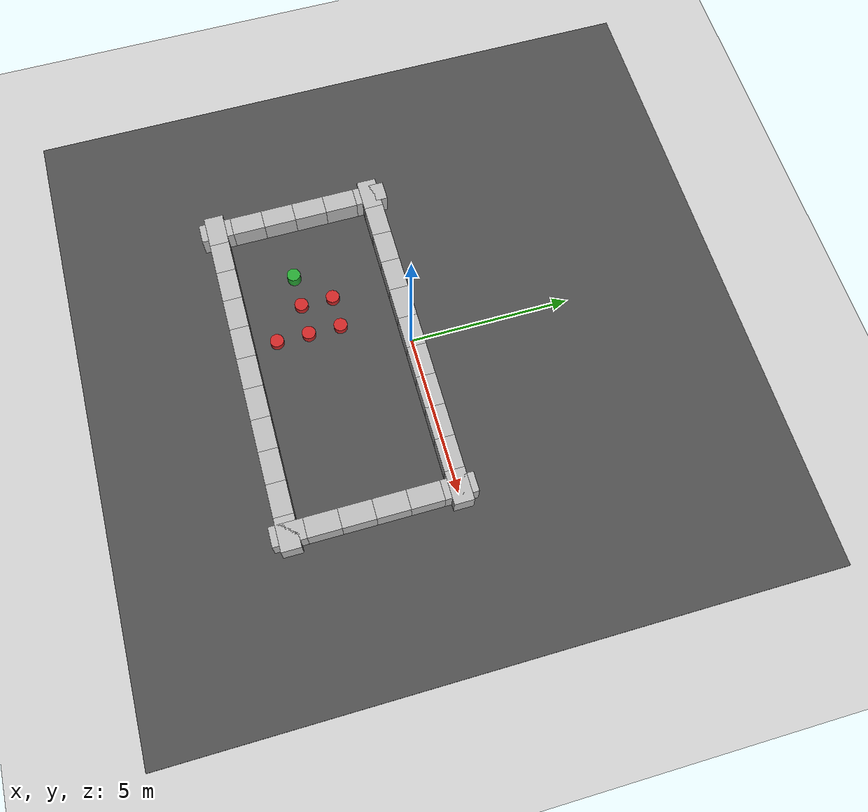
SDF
<sdf version="1.4">
 <world name="default">
  <light name="sun" type="directional">
   <pose>0 0 10 0 -0 0</pose>
   <diffuse>0.8 0.8 0.8 1</diffuse>
   <specular>0.2 0.2 0.2 1</specular>
   <attenuation>
    <range>1000</range>
    <constant>0.9</constant>
    <linear>0.01</linear>
    <quadratic>0.001</quadratic>
   </attenuation>
   <direction>-0.5 0.1 -0.9</direction>
  </light>
  <model name="ground_plane">
   <static>1</static>
   <link name="link">
    <collision name="collision">
     <geometry><plane><normal>0 0 1</normal><size>100 100</size></plane></geometry>
     <surface><friction><ode><mu>100</mu><mu2>50</mu2></ode></friction></surface>
    </collision>
    <visual name="visual">
     <cast_shadows>0</cast_shadows>
     <geometry><plane><normal>0 0 1</normal><size>100 100</size></plane></geometry>
     <material>
      <script><uri>file://media/materials/scripts/gazebo.material</uri><name>Gazebo/Grey</name></script>
     </material>
    </visual>
    <velocity_decay><linear>0</linear><angular>0</angular></velocity_decay>
   </link>
  </model>
  <physics type="ode">
   <max_step_size>0.001</max_step_size>
   <real_time_factor>1</real_time_factor>
   <real_time_update_rate>1000</real_time_update_rate>
   <gravity>0 0 -9.8</gravity>
  </physics>
  <scene><ambient>0.4 0.4 0.4 1</ambient><background>0.7 0.7 0.7 1</background><shadows>1</shadows></scene>
  <spherical_coordinates>
   <surface_model>EARTH_WGS84</surface_model>
   <latitude_deg>0</latitude_deg>
   <longitude_deg>0</longitude_deg>
   <elevation>0</elevation>
   <heading_deg>0</heading_deg>
  </spherical_coordinates>
  <model name="wall_0">
   <static>1</static>
   <link name="link">
    <pose>0 0 0.25 0 -0 0</pose>
    <collision name="collision"><geometry><box><size>1 0.6 1</size></box></geometry></collision>
    <visual name="visual">
     <geometry>
      <mesh><uri>model://brick_box_3x1x3/meshes/simple_box.dae</uri><scale>1 0.6 1</scale></mesh>
     </geometry>
     <material>
      <script>
       <uri>model://brick_box_3x1x3/materials/scripts</uri>
       <uri>model://brick_box_3x1x3/materials/textures</uri>
       <name>BrickBox/Diffuse</name>
      </script>
     </material>
    </visual>
    <velocity_decay><linear>0</linear><angular>0</angular></velocity_decay>
   </link>
   <pose>4 -5 0 0 -0 0</pose>
  </model>
  <model name="wall_1">
   <static>1</static>
   <link name="link">
    <pose>0 0 0.25 0 -0 0</pose>
    <collision name="collision"><geometry><box><size>1 0.6 1</size></box></geometry></collision>
    <visual name="visual">
     <geometry>
      <mesh><uri>model://brick_box_3x1x3/meshes/simple_box.dae</uri><scale>1 0.6 1</scale></mesh>
     </geometry>
     <material>
      <script>
       <uri>model://brick_box_3x1x3/materials/scripts</uri>
       <uri>model://brick_box_3x1x3/materials/textures</uri>
       <name>BrickBox/Diffuse</name>
      </script>
     </material>
    </visual>
    <velocity_decay><linear>0</linear><angular>0</angular></velocity_decay>
   </link>
   <pose>3 -5 0 0 -0 0</pose>
  </model>
  <model name="wall_2">
   <static>1</static>
   <link name="link">
    <pose>0 0 0.25 0 -0 0</pose>
    <collision name="collision"><geometry><box><size>1 0.6 1</size></box></geometry></collision>
    <visual name="visual">
     <geometry>
      <mesh><uri>model://brick_box_3x1x3/meshes/simple_box.dae</uri><scale>1 0.6 1</scale></mesh>
     </geometry>
     <material>
      <script>
       <uri>model://brick_box_3x1x3/materials/scripts</uri>
       <uri>model://brick_box_3x1x3/materials/textures</uri>
       <name>BrickBox/Diffuse</name>
      </script>
     </material>
    </visual>
    <velocity_decay><linear>0</linear><angular>0</angular></velocity_decay>
   </link>
   <pose>2 -5 0 0 -0 0</pose>
  </model>
  <model name="wall_3">
   <static>1</static>
   <link name="link">
    <pose>0 0 0.25 0 -0 0</pose>
    <collision name="collision"><geometry><box><size>1 0.6 1</size></box></geometry></collision>
    <visual name="visual">
     <geometry>
      <mesh><uri>model://brick_box_3x1x3/meshes/simple_box.dae</uri><scale>1 0.6 1</scale></mesh>
     </geometry>
     <material>
      <script>
       <uri>model://brick_box_3x1x3/materials/scripts</uri>
       <uri>model://brick_box_3x1x3/materials/textures</uri>
       <name>BrickBox/Diffuse</name>
      </script>
     </material>
    </visual>
    <velocity_decay><linear>0</linear><angular>0</angular></velocity_decay>
   </link>
   <pose>5 -5 0 0 -0 0</pose>
  </model>
  <model name="wall_4">
   <static>1</static>
   <link name="link">
    <pose>0 0 0.25 0 -0 0</pose>
    <collision name="collision"><geometry><box><size>0.6 1 1</size></box></geometry></collision>
    <visual name="visual">
     <geometry>
      <mesh><uri>model://brick_box_3x1x3/meshes/simple_box.dae</uri><scale>0.6 1 1</scale></mesh>
     </geometry>
     <material>
      <script>
       <uri>model://brick_box_3x1x3/materials/scripts</uri>
       <uri>model://brick_box_3x1x3/materials/textures</uri>
       <name>BrickBox/Diffuse</name>
      </script>
     </material>
    </visual>
    <velocity_decay><linear>0</linear><angular>0</angular></velocity_decay>
   </link>
   <pose>5 -5 0 0 -0 0</pose>
  </model>
  <model name="wall_5">
   <static>1</static>
   <link name="link">
    <pose>0 0 0.25 0 -0 0</pose>
    <collision name="collision"><geometry><box><size>0.6 1 1</size></box></geometry></collision>
    <visual name="visual">
     <geometry>
      <mesh><uri>model://brick_box_3x1x3/meshes/simple_box.dae</uri><scale>0.6 1 1</scale></mesh>
     </geometry>
     <material>
      <script>
       <uri>model://brick_box_3x1x3/materials/scripts</uri>
       <uri>model://brick_box_3x1x3/materials/textures</uri>
       <name>BrickBox/Diffuse</name>
      </script>
     </material>
    </visual>
    <velocity_decay><linear>0</linear><angular>0</angular></velocity_decay>
   </link>
   <pose>5 -4 0 0 -0 0</pose>
  </model>
  <model name="wall_6">
   <static>1</static>
   <link name="link">
    <pose>0 0 0.25 0 -0 0</pose>
    <collision name="collision"><geometry><box><size>1 0.6 1</size></box></geometry></collision>
    <visual name="visual">
     <geometry>
      <mesh><uri>model://brick_box_3x1x3/meshes/simple_box.dae</uri><scale>1 0.6 1</scale></mesh>
     </geometry>
     <material>
      <script>
       <uri>model://brick_box_3x1x3/materials/scripts</uri>
       <uri>model://brick_box_3x1x3/materials/textures</uri>
       <name>BrickBox/Diffuse</name>
      </script>
     </material>
    </visual>
    <velocity_decay><linear>0</linear><angular>0</angular></velocity_decay>
   </link>
   <pose>1 -5 0 0 -0 0</pose>
  </model>
  <model name="wall_7">
   <static>1</static>
   <link name="link">
    <pose>0 0 0.25 0 -0 0</pose>
    <collision name="collision"><geometry><box><size>1 0.6 1</size></box></geometry></collision>
    <visual name="visual">
     <geometry>
      <mesh><uri>model://brick_box_3x1x3/meshes/simple_box.dae</uri><scale>1 0.6 1</scale></mesh>
     </geometry>
     <material>
      <script>
       <uri>model://brick_box_3x1x3/materials/scripts</uri>
       <uri>model://brick_box_3x1x3/materials/textures</uri>
       <name>BrickBox/Diffuse</name>
      </script>
     </material>
    </visual>
    <velocity_decay><linear>0</linear><angular>0</angular></velocity_decay>
   </link>
   <pose>0 -5 0 0 -0 0</pose>
  </model>
  <model name="wall_8">
   <static>1</static>
   <link name="link">
    <pose>0 0 0.25 0 -0 0</pose>
    <collision name="collision"><geometry><box><size>1 0.6 1</size></box></geometry></collision>
    <visual name="visual">
     <geometry>
      <mesh><uri>model://brick_box_3x1x3/meshes/simple_box.dae</uri><scale>1 0.6 1</scale></mesh>
     </geometry>
     <material>
      <script>
       <uri>model://brick_box_3x1x3/materials/scripts</uri>
       <uri>model://brick_box_3x1x3/materials/textures</uri>
       <name>BrickBox/Diffuse</name>
      </script>
     </material>
    </visual>
    <velocity_decay><linear>0</linear><angular>0</angular></velocity_decay>
   </link>
   <pose>-1 -5 0 0 -0 0</pose>
  </model>
  <model name="wall_9">
   <static>1</static>
   <link name="link">
    <pose>0 0 0.25 0 -0 0</pose>
    <collision name="collision"><geometry><box><size>1 0.6 1</size></box></geometry></collision>
    <visual name="visual">
     <geometry>
      <mesh><uri>model://brick_box_3x1x3/meshes/simple_box.dae</uri><scale>1 0.6 1</scale></mesh>
     </geometry>
     <material>
      <script>
       <uri>model://brick_box_3x1x3/materials/scripts</uri>
       <uri>model://brick_box_3x1x3/materials/textures</uri>
       <name>BrickBox/Diffuse</name>
      </script>
     </material>
    </visual>
    <velocity_decay><linear>0</linear><angular>0</angular></velocity_decay>
   </link>
   <pose>-2 -5 0 0 -0 0</pose>
  </model>
  <model name="wall_10">
   <static>1</static>
   <link name="link">
    <pose>0 0 0.25 0 -0 0</pose>
    <collision name="collision"><geometry><box><size>1 0.6 1</size></box></geometry></collision>
    <visual name="visual">
     <geometry>
      <mesh><uri>model://brick_box_3x1x3/meshes/simple_box.dae</uri><scale>1 0.6 1</scale></mesh>
     </geometry>
     <material>
      <script>
       <uri>model://brick_box_3x1x3/materials/scripts</uri>
       <uri>model://brick_box_3x1x3/materials/textures</uri>
       <name>BrickBox/Diffuse</name>
      </script>
     </material>
    </visual>
    <velocity_decay><linear>0</linear><angular>0</angular></velocity_decay>
   </link>
   <pose>-3 -5 0 0 -0 0</pose>
  </model>
  <model name="wall_11">
   <static>1</static>
   <link name="link">
    <pose>0 0 0.25 0 -0 0</pose>
    <collision name="collision"><geometry><box><size>1 0.6 1</size></box></geometry></collision>
    <visual name="visual">
     <geometry>
      <mesh><uri>model://brick_box_3x1x3/meshes/simple_box.dae</uri><scale>1 0.6 1</scale></mesh>
     </geometry>
     <material>
      <script>
       <uri>model://brick_box_3x1x3/materials/scripts</uri>
       <uri>model://brick_box_3x1x3/materials/textures</uri>
       <name>BrickBox/Diffuse</name>
      </script>
     </material>
    </visual>
    <velocity_decay><linear>0</linear><angular>0</angular></velocity_decay>
   </link>
   <pose>-4 -5 0 0 -0 0</pose>
  </model>
  <model name="wall_12">
   <static>1</static>
   <link name="link">
    <pose>0 0 0.25 0 -0 0</pose>
    <collision name="collision"><geometry><box><size>1 0.6 1</size></box></geometry></collision>
    <visual name="visual">
     <geometry>
      <mesh><uri>model://brick_box_3x1x3/meshes/simple_box.dae</uri><scale>1 0.6 1</scale></mesh>
     </geometry>
     <material>
      <script>
       <uri>model://brick_box_3x1x3/materials/scripts</uri>
       <uri>model://brick_box_3x1x3/materials/textures</uri>
       <name>BrickBox/Diffuse</name>
      </script>
     </material>
    </visual>
    <velocity_decay><linear>0</linear><angular>0</angular></velocity_decay>
   </link>
   <pose>-5 -5 0 0 -0 0</pose>
  </model>
  <model name="wall_13">
   <static>1</static>
   <link name="link">
    <pose>0 0 0.25 0 -0 0</pose>
    <collision name="collision"><geometry><box><size>0.6 1 1</size></box></geometry></collision>
    <visual name="visual">
     <geometry>
      <mesh><uri>model://brick_box_3x1x3/meshes/simple_box.dae</uri><scale>0.6 1 1</scale></mesh>
     </geometry>
     <material>
      <script>
       <uri>model://brick_box_3x1x3/materials/scripts</uri>
       <uri>model://brick_box_3x1x3/materials/textures</uri>
       <name>BrickBox/Diffuse</name>
      </script>
     </material>
    </visual>
    <velocity_decay><linear>0</linear><angular>0</angular></velocity_decay>
   </link>
   <pose>5 -3 0 0 -0 0</pose>
  </model>
  <model name="wall_14">
   <static>1</static>
   <link name="link">
    <pose>0 0 0.25 0 -0 0</pose>
    <collision name="collision"><geometry><box><size>0.6 1 1</size></box></geometry></collision>
    <visual name="visual">
     <geometry>
      <mesh><uri>model://brick_box_3x1x3/meshes/simple_box.dae</uri><scale>0.6 1 1</scale></mesh>
     </geometry>
     <material>
      <script>
       <uri>model://brick_box_3x1x3/materials/scripts</uri>
       <uri>model://brick_box_3x1x3/materials/textures</uri>
       <name>BrickBox/Diffuse</name>
      </script>
     </material>
    </visual>
    <velocity_decay><linear>0</linear><angular>0</angular></velocity_decay>
   </link>
   <pose>5 -2 0 0 -0 0</pose>
  </model>
  <model name="wall_15">
   <static>1</static>
   <link name="link">
    <pose>0 0 0.25 0 -0 0</pose>
    <collision name="collision"><geometry><box><size>0.6 1 1</size></box></geometry></collision>
    <visual name="visual">
     <geometry>
      <mesh><uri>model://brick_box_3x1x3/meshes/simple_box.dae</uri><scale>0.6 1 1</scale></mesh>
     </geometry>
     <material>
      <script>
       <uri>model://brick_box_3x1x3/materials/scripts</uri>
       <uri>model://brick_box_3x1x3/materials/textures</uri>
       <name>BrickBox/Diffuse</name>
      </script>
     </material>
    </visual>
    <velocity_decay><linear>0</linear><angular>0</angular></velocity_decay>
   </link>
   <pose>5 -1 0 0 -0 0</pose>
  </model>
  <model name="wall_16">
   <static>1</static>
   <link name="link">
    <pose>0 0 0.25 0 -0 0</pose>
    <collision name="collision"><geometry><box><size>0.6 1 1</size></box></geometry></collision>
    <visual name="visual">
     <geometry>
      <mesh><uri>model://brick_box_3x1x3/meshes/simple_box.dae</uri><scale>0.6 1 1</scale></mesh>
     </geometry>
     <material>
      <script>
       <uri>model://brick_box_3x1x3/materials/scripts</uri>
       <uri>model://brick_box_3x1x3/materials/textures</uri>
       <name>BrickBox/Diffuse</name>
      </script>
     </material>
    </visual>
    <velocity_decay><linear>0</linear><angular>0</angular></velocity_decay>
   </link>
   <pose>5 0 0 0 -0 0</pose>
  </model>
  <model name="wall_33">
   <static>1</static>
   <link name="link">
    <pose>0 0 0.25 0 -0 0</pose>
    <collision name="collision"><geometry><box><size>0.6 1 1</size></box></geometry></collision>
    <visual name="visual">
     <geometry>
      <mesh><uri>model://brick_box_3x1x3/meshes/simple_box.dae</uri><scale>0.6 1 1</scale></mesh>
     </geometry>
     <material>
      <script>
       <uri>model://brick_box_3x1x3/materials/scripts</uri>
       <uri>model://brick_box_3x1x3/materials/textures</uri>
       <name>BrickBox/Diffuse</name>
      </script>
     </material>
    </visual>
    <velocity_decay><linear>0</linear><angular>0</angular></velocity_decay>
   </link>
   <pose>-5 -5 0 0 -0 0</pose>
  </model>
  <model name="wall_34">
   <static>1</static>
   <link name="link">
    <pose>0 0 0.25 0 -0 0</pose>
    <collision name="collision"><geometry><box><size>0.6 1 1</size></box></geometry></collision>
    <visual name="visual">
     <geometry>
      <mesh><uri>model://brick_box_3x1x3/meshes/simple_box.dae</uri><scale>0.6 1 1</scale></mesh>
     </geometry>
     <material>
      <script>
       <uri>model://brick_box_3x1x3/materials/scripts</uri>
       <uri>model://brick_box_3x1x3/materials/textures</uri>
       <name>BrickBox/Diffuse</name>
      </script>
     </material>
    </visual>
    <velocity_decay><linear>0</linear><angular>0</angular></velocity_decay>
   </link>
   <pose>-5 -4 0 0 -0 0</pose>
  </model>
  <model name="wall_35">
   <static>1</static>
   <link name="link">
    <pose>0 0 0.25 0 -0 0</pose>
    <collision name="collision"><geometry><box><size>0.6 1 1</size></box></geometry></collision>
    <visual name="visual">
     <geometry>
      <mesh><uri>model://brick_box_3x1x3/meshes/simple_box.dae</uri><scale>0.6 1 1</scale></mesh>
     </geometry>
     <material>
      <script>
       <uri>model://brick_box_3x1x3/materials/scripts</uri>
       <uri>model://brick_box_3x1x3/materials/textures</uri>
       <name>BrickBox/Diffuse</name>
      </script>
     </material>
    </visual>
    <velocity_decay><linear>0</linear><angular>0</angular></velocity_decay>
   </link>
   <pose>-5 -3 0 0 -0 0</pose>
  </model>
  <model name="wall_36">
   <static>1</static>
   <link name="link">
    <pose>0 0 0.25 0 -0 0</pose>
    <collision name="collision"><geometry><box><size>0.6 1 1</size></box></geometry></collision>
    <visual name="visual">
     <geometry>
      <mesh><uri>model://brick_box_3x1x3/meshes/simple_box.dae</uri><scale>0.6 1 1</scale></mesh>
     </geometry>
     <material>
      <script>
       <uri>model://brick_box_3x1x3/materials/scripts</uri>
       <uri>model://brick_box_3x1x3/materials/textures</uri>
       <name>BrickBox/Diffuse</name>
      </script>
     </material>
    </visual>
    <velocity_decay><linear>0</linear><angular>0</angular></velocity_decay>
   </link>
   <pose>-5 -2 0 0 -0 0</pose>
  </model>
  <model name="wall_37">
   <static>1</static>
   <link name="link">
    <pose>0 0 0.25 0 -0 0</pose>
    <collision name="collision"><geometry><box><size>0.6 1 1</size></box></geometry></collision>
    <visual name="visual">
     <geometry>
      <mesh><uri>model://brick_box_3x1x3/meshes/simple_box.dae</uri><scale>0.6 1 1</scale></mesh>
     </geometry>
     <material>
      <script>
       <uri>model://brick_box_3x1x3/materials/scripts</uri>
       <uri>model://brick_box_3x1x3/materials/textures</uri>
       <name>BrickBox/Diffuse</name>
      </script>
     </material>
    </visual>
    <velocity_decay><linear>0</linear><angular>0</angular></velocity_decay>
   </link>
   <pose>-5 -1 0 0 -0 0</pose>
  </model>
  <model name="wall_38">
   <static>1</static>
   <link name="link">
    <pose>0 0 0.25 0 -0 0</pose>
    <collision name="collision"><geometry><box><size>0.6 1 1</size></box></geometry></collision>
    <visual name="visual">
     <geometry>
      <mesh><uri>model://brick_box_3x1x3/meshes/simple_box.dae</uri><scale>0.6 1 1</scale></mesh>
     </geometry>
     <material>
      <script>
       <uri>model://brick_box_3x1x3/materials/scripts</uri>
       <uri>model://brick_box_3x1x3/materials/textures</uri>
       <name>BrickBox/Diffuse</name>
      </script>
     </material>
    </visual>
    <velocity_decay><linear>0</linear><angular>0</angular></velocity_decay>
   </link>
   <pose>-5 0 0 0 -0 0</pose>
  </model>
  <model name="wall">
   <static>1</static>
   <link name="link">
    <pose>0 0 0.25 0 -0 0</pose>
    <collision name="collision"><geometry><box><size>1 0.6 1</size></box></geometry></collision>
    <visual name="visual">
     <geometry>
      <mesh><uri>model://brick_box_3x1x3/meshes/simple_box.dae</uri><scale>1 0.6 1</scale></mesh>
     </geometry>
     <material>
      <script>
       <uri>model://brick_box_3x1x3/materials/scripts</uri>
       <uri>model://brick_box_3x1x3/materials/textures</uri>
       <name>BrickBox/Diffuse</name>
      </script>
     </material>
    </visual>
    <velocity_decay><linear>0</linear><angular>0</angular></velocity_decay>
   </link>
   <pose>-5 0 0 0 -0 0</pose>
  </model>
  <model name="wall_44">
   <static>1</static>
   <link name="link">
    <pose>0 0 0.25 0 -0 0</pose>
    <collision name="collision"><geometry><box><size>1 0.6 1</size></box></geometry></collision>
    <visual name="visual">
     <geometry>
      <mesh><uri>model://brick_box_3x1x3/meshes/simple_box.dae</uri><scale>1 0.6 1</scale></mesh>
     </geometry>
     <material>
      <script>
       <uri>model://brick_box_3x1x3/materials/scripts</uri>
       <uri>model://brick_box_3x1x3/materials/textures</uri>
       <name>BrickBox/Diffuse</name>
      </script>
     </material>
    </visual>
    <velocity_decay><linear>0</linear><angular>0</angular></velocity_decay>
   </link>
   <pose>-4 0 0 0 -0 0</pose>
  </model>
  <model name="wall_45">
   <static>1</static>
   <link name="link">
    <pose>0 0 0.25 0 -0 0</pose>
    <collision name="collision"><geometry><box><size>1 0.6 1</size></box></geometry></collision>
    <visual name="visual">
     <geometry>
      <mesh><uri>model://brick_box_3x1x3/meshes/simple_box.dae</uri><scale>1 0.6 1</scale></mesh>
     </geometry>
     <material>
      <script>
       <uri>model://brick_box_3x1x3/materials/scripts</uri>
       <uri>model://brick_box_3x1x3/materials/textures</uri>
       <name>BrickBox/Diffuse</name>
      </script>
     </material>
    </visual>
    <velocity_decay><linear>0</linear><angular>0</angular></velocity_decay>
   </link>
   <pose>-3 0 0 0 -0 0</pose>
  </model>
  <model name="wall_46">
   <static>1</static>
   <link name="link">
    <pose>0 0 0.25 0 -0 0</pose>
    <collision name="collision"><geometry><box><size>1 0.6 1</size></box></geometry></collision>
    <visual name="visual">
     <geometry>
      <mesh><uri>model://brick_box_3x1x3/meshes/simple_box.dae</uri><scale>1 0.6 1</scale></mesh>
     </geometry>
     <material>
      <script>
       <uri>model://brick_box_3x1x3/materials/scripts</uri>
       <uri>model://brick_box_3x1x3/materials/textures</uri>
       <name>BrickBox/Diffuse</name>
      </script>
     </material>
    </visual>
    <velocity_decay><linear>0</linear><angular>0</angular></velocity_decay>
   </link>
   <pose>5 0 0 0 -0 0</pose>
  </model>
  <model name="wall_47">
   <static>1</static>
   <link name="link">
    <pose>0 0 0.25 0 -0 0</pose>
    <collision name="collision"><geometry><box><size>1 0.6 1</size></box></geometry></collision>
    <visual name="visual">
     <geometry>
      <mesh><uri>model://brick_box_3x1x3/meshes/simple_box.dae</uri><scale>1 0.6 1</scale></mesh>
     </geometry>
     <material>
      <script>
       <uri>model://brick_box_3x1x3/materials/scripts</uri>
       <uri>model://brick_box_3x1x3/materials/textures</uri>
       <name>BrickBox/Diffuse</name>
      </script>
     </material>
    </visual>
    <velocity_decay><linear>0</linear><angular>0</angular></velocity_decay>
   </link>
   <pose>4 0 0 0 -0 0</pose>
  </model>
  <model name="wall_48">
   <static>1</static>
   <link name="link">
    <pose>0 0 0.25 0 -0 0</pose>
    <collision name="collision"><geometry><box><size>1 0.6 1</size></box></geometry></collision>
    <visual name="visual">
     <geometry>
      <mesh><uri>model://brick_box_3x1x3/meshes/simple_box.dae</uri><scale>1 0.6 1</scale></mesh>
     </geometry>
     <material>
      <script>
       <uri>model://brick_box_3x1x3/materials/scripts</uri>
       <uri>model://brick_box_3x1x3/materials/textures</uri>
       <name>BrickBox/Diffuse</name>
      </script>
     </material>
    </visual>
    <velocity_decay><linear>0</linear><angular>0</angular></velocity_decay>
   </link>
   <pose>3 0 0 0 -0 0</pose>
  </model>
  <model name="wall_49">
   <static>1</static>
   <link name="link">
    <pose>0 0 0.25 0 -0 0</pose>
    <collision name="collision"><geometry><box><size>1 0.6 1</size></box></geometry></collision>
    <visual name="visual">
     <geometry>
      <mesh><uri>model://brick_box_3x1x3/meshes/simple_box.dae</uri><scale>1 0.6 1</scale></mesh>
     </geometry>
     <material>
      <script>
       <uri>model://brick_box_3x1x3/materials/scripts</uri>
       <uri>model://brick_box_3x1x3/materials/textures</uri>
       <name>BrickBox/Diffuse</name>
      </script>
     </material>
    </visual>
    <velocity_decay><linear>0</linear><angular>0</angular></velocity_decay>
   </link>
   <pose>2 0 0 0 -0 0</pose>
  </model>
  <model name="wall_57">
   <static>1</static>
   <link name="link">
    <pose>0 0 0.25 0 -0 0</pose>
    <collision name="collision"><geometry><box><size>1 0.6 1</size></box></geometry></collision>
    <visual name="visual">
     <geometry>
      <mesh><uri>model://brick_box_3x1x3/meshes/simple_box.dae</uri><scale>1 0.6 1</scale></mesh>
     </geometry>
     <material>
      <script>
       <uri>model://brick_box_3x1x3/materials/scripts</uri>
       <uri>model://brick_box_3x1x3/materials/textures</uri>
       <name>BrickBox/Diffuse</name>
      </script>
     </material>
    </visual>
    <velocity_decay><linear>0</linear><angular>0</angular></velocity_decay>
   </link>
   <pose>-1 0 0 0 -0 0</pose>
  </model>
  <model name="wall_92">
   <static>1</static>
   <link name="link">
    <pose>0 0 0.25 0 -0 0</pose>
    <collision name="collision"><geometry><box><size>1 0.6 1</size></box></geometry></collision>
    <visual name="visual">
     <geometry>
      <mesh><uri>model://brick_box_3x1x3/meshes/simple_box.dae</uri><scale>1 0.6 1</scale></mesh>
     </geometry>
     <material>
      <script>
       <uri>model://brick_box_3x1x3/materials/scripts</uri>
       <uri>model://brick_box_3x1x3/materials/textures</uri>
       <name>BrickBox/Diffuse</name>
      </script>
     </material>
    </visual>
    <velocity_decay><linear>0</linear><angular>0</angular></velocity_decay>
   </link>
  </model>
  <model name="wall_93">
   <static>1</static>
   <link name="link">
    <pose>0 0 0.25 0 -0 0</pose>
    <collision name="collision"><geometry><box><size>1 0.6 1</size></box></geometry></collision>
    <visual name="visual">
     <geometry>
      <mesh><uri>model://brick_box_3x1x3/meshes/simple_box.dae</uri><scale>1 0.6 1</scale></mesh>
     </geometry>
     <material>
      <script>
       <uri>model://brick_box_3x1x3/materials/scripts</uri>
       <uri>model://brick_box_3x1x3/materials/textures</uri>
       <name>BrickBox/Diffuse</name>
      </script>
     </material>
    </visual>
    <velocity_decay><linear>0</linear><angular>0</angular></velocity_decay>
   </link>
   <pose>1 0 0 0 -0 0</pose>
  </model>
  <model name="movable_2">
   <link name="link">
    <pose>0 0 0.23 0 -0 0</pose>
    <collision name="collision">
     <geometry><cylinder><radius>0.0001</radius><length>0.001</length></cylinder></geometry>
    </collision>
    <visual name="visual">
     <geometry><cylinder><radius>0.21</radius><length>0.45</length></cylinder></geometry>
     <material>
      <script><uri>file://media/materials/scripts/gazebo.material</uri><name>Gazebo/Red</name></script>
     </material>
    </visual>
    <velocity_decay><linear>0</linear><angular>0</angular></velocity_decay>
    <inertial>
     <inertia><ixx>1</ixx><ixy>0</ixy><ixz>0</ixz><iyy>1</iyy><iyz>0</iyz><izz>1</izz></inertia>
     <mass>1</mass>
    </inertial>
   </link>
   <pose>-1.00014 -4.00058 -0.179499 -0.002538 0.000628 -1e-06</pose>
   <static>0</static>
  </model>
  <model name="movable_3">
   <link name="link">
    <pose>0 0 0.23 0 -0 0</pose>
    <collision name="collision">
     <geometry><cylinder><radius>0.0001</radius><length>0.001</length></cylinder></geometry>
    </collision>
    <visual name="visual">
     <geometry><cylinder><radius>0.21</radius><length>0.45</length></cylinder></geometry>
     <material>
      <script><uri>file://media/materials/scripts/gazebo.material</uri><name>Gazebo/Red</name></script>
     </material>
    </visual>
    <velocity_decay><linear>0</linear><angular>0</angular></velocity_decay>
    <inertial>
     <inertia><ixx>1</ixx><ixy>0</ixy><ixz>0</ixz><iyy>1</iyy><iyz>0</iyz><izz>1</izz></inertia>
     <mass>1</mass>
    </inertial>
   </link>
   <pose>-1.00016 -3.0006 -0.179499 -0.00262 0.000693 -1e-06</pose>
   <static>0</static>
  </model>
  <model name="movable_4">
   <link name="link">
    <pose>0 0 0.23 0 -0 0</pose>
    <collision name="collision">
     <geometry><cylinder><radius>0.0001</radius><length>0.001</length></cylinder></geometry>
    </collision>
    <visual name="visual">
     <geometry><cylinder><radius>0.21</radius><length>0.45</length></cylinder></geometry>
     <material>
      <script><uri>file://media/materials/scripts/gazebo.material</uri><name>Gazebo/Red</name></script>
     </material>
    </visual>
    <velocity_decay><linear>0</linear><angular>0</angular></velocity_decay>
    <inertial>
     <inertia><ixx>1</ixx><ixy>0</ixy><ixz>0</ixz><iyy>1</iyy><iyz>0</iyz><izz>1</izz></inertia>
     <mass>1</mass>
    </inertial>
   </link>
   <pose>-1.00018 -2.00063 -0.179499 -0.002734 0.000772 -1e-06</pose>
   <static>0</static>
  </model>
  <model name="movable_0">
   <link name="link">
    <pose>0 0 0.23 0 -0 0</pose>
    <collision name="collision">
     <geometry><cylinder><radius>0.0001</radius><length>0.001</length></cylinder></geometry>
    </collision>
    <visual name="visual">
     <geometry><cylinder><radius>0.21</radius><length>0.45</length></cylinder></geometry>
     <material>
      <script><uri>file://media/materials/scripts/gazebo.material</uri><name>Gazebo/Red</name></script>
     </material>
    </visual>
    <velocity_decay><linear>0</linear><angular>0</angular></velocity_decay>
    <inertial>
     <inertia><ixx>1</ixx><ixy>0</ixy><ixz>0</ixz><iyy>1</iyy><iyz>0</iyz><izz>1</izz></inertia>
     <mass>1</mass>
    </inertial>
   </link>
   <pose>-2.00017 -3.00062 -0.179499 -0.002716 0.000757 -1e-06</pose>
   <static>0</static>
  </model>
  <model name="movable">
   <link name="link">
    <pose>0 0 0.23 0 -0 0</pose>
    <collision name="collision">
     <geometry><cylinder><radius>0.0001</radius><length>0.001</length></cylinder></geometry>
    </collision>
    <visual name="visual">
     <geometry><cylinder><radius>0.21</radius><length>0.45</length></cylinder></geometry>
     <material>
      <script><uri>file://media/materials/scripts/gazebo.material</uri><name>Gazebo/Red</name></script>
     </material>
    </visual>
    <velocity_decay><linear>0</linear><angular>0</angular></velocity_decay>
    <inertial>
     <inertia><ixx>1</ixx><ixy>0</ixy><ixz>0</ixz><iyy>1</iyy><iyz>0</iyz><izz>1</izz></inertia>
     <mass>1</mass>
    </inertial>
   </link>
   <pose>-2.00028 -2.00069 -0.179499 -0.003003 0.001232 -1e-06</pose>
   <static>0</static>
  </model>
  <model name="wall_108">
   <static>1</static>
   <link name="link">
    <pose>0 0 0.25 0 -0 0</pose>
    <collision name="collision"><geometry><box><size>1 0.6 1</size></box></geometry></collision>
    <visual name="visual">
     <geometry>
      <mesh><uri>model://brick_box_3x1x3/meshes/simple_box.dae</uri><scale>1 0.6 1</scale></mesh>
     </geometry>
     <material>
      <script>
       <uri>model://brick_box_3x1x3/materials/scripts</uri>
       <uri>model://brick_box_3x1x3/materials/textures</uri>
       <name>BrickBox/Diffuse</name>
      </script>
     </material>
    </visual>
    <velocity_decay><linear>0</linear><angular>0</angular></velocity_decay>
   </link>
   <pose>-2 0 0 0 -0 0</pose>
  </model>
  <model name="asphalt_plane">
   <static>1</static>
   <link name="link">
    <collision name="collision"><geometry><box><size>20 20 0.1</size></box></geometry></collision>
    <visual name="visual">
     <cast_shadows>0</cast_shadows>
     <geometry><box><size>20 20 0.1</size></box></geometry>
     <material>
      <script>
       <uri>model://asphalt_plane/materials/scripts</uri>
       <uri>model://asphalt_plane/materials/textures</uri>
       <name>vrc/asphalt</name>
      </script>
     </material>
    </visual>
    <velocity_decay><linear>0</linear><angular>0</angular></velocity_decay>
   </link>
  </model>
  <model name="coke_can">
   <pose>-3.00027 -2.99982 0.224998 -3.2e-05 -2.1e-05 -2.3e-05</pose>
   <link name="gl_">
    <collision name="collision">
     <geometry><cylinder><radius>0.21</radius><length>0.35</length></cylinder></geometry>
    </collision>
    <visual name="visual">
     <geometry><cylinder><radius>0.21</radius><length>0.35</length></cylinder></geometry>
     <material>
      <script><uri>file://media/materials/scripts/gazebo.material</uri><name>Gazebo/Green</name></script>
     </material>
    </visual>
    <velocity_decay><linear>0</linear><angular>0</angular></velocity_decay>
    <inertial>
     <inertia><ixx>1</ixx><ixy>0</ixy><ixz>0</ixz><iyy>1</iyy><iyz>0</iyz><izz>1</izz></inertia>
     <mass>1</mass>
    </inertial>
   </link>
   <static>0</static>
  </model>
 </world>
</sdf>
